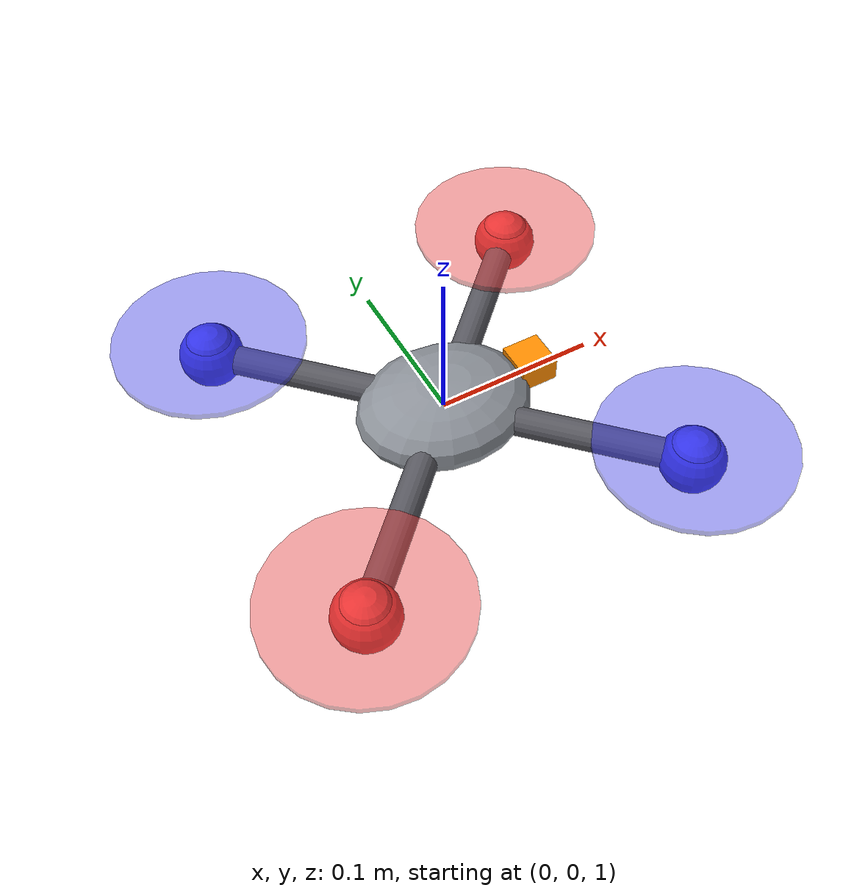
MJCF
<mujoco model="quad">
  <compiler angle="radian" autolimits="true"/>
  <option timestep="0.002" integrator="RK4" gravity="0 0 -9.81"/>

  <default>
    <default class="quad">
      <geom contype="0" conaffinity="0" group="1"/>
    </default>
  </default>

  <asset>
    <material name="body_mat" rgba="0.55 0.57 0.6 1" specular="0.6" shininess="0.5" reflectance="0.15"/>
    <material name="arm_mat" rgba="0.35 0.35 0.38 1" specular="0.4" shininess="0.3"/>
    <material name="nose_mat" rgba="1.0 0.55 0.0 1" specular="0.5" shininess="0.4"/>
  </asset>

  <worldbody>
    <body name="quad" pos="0 0 1" childclass="quad">
      <freejoint name="root"/>
      <!-- Explicit inertial overrides any geom-based inertia estimate -
           this is the authoritative mass/inertia from TDD.md section 2. -->
      <inertial pos="0 0 0" mass="1.0" diaginertia="0.003375 0.003375 0.006750"/>

      <!-- Central hub: rounded (ellipsoid) instead of a flat box, reads
           more like a drone fuselage than a wireframe placeholder. -->
      <geom name="body" type="ellipsoid" size="0.055 0.045 0.022" material="body_mat"/>

      <geom name="nose" type="box" pos="0.06 0 0.005" size="0.012 0.012 0.008" material="nose_mat"/>

      <!-- Arms: body center to each rotor position, purely visual. -->
      <geom name="arm1" type="capsule" fromto="0 0 0  0.106066  0.106066 0" size="0.009" material="arm_mat"/>
      <geom name="arm2" type="capsule" fromto="0 0 0 -0.106066 -0.106066 0" size="0.009" material="arm_mat"/>
      <geom name="arm3" type="capsule" fromto="0 0 0  0.106066 -0.106066 0" size="0.009" material="arm_mat"/>
      <geom name="arm4" type="capsule" fromto="0 0 0 -0.106066  0.106066 0" size="0.009" material="arm_mat"/>

      <site name="rotor1" pos=" 0.106066  0.106066 0" size="0.02" rgba="0.9 0.2 0.2 1"/>
      <site name="rotor2" pos="-0.106066 -0.106066 0" size="0.02" rgba="0.9 0.2 0.2 1"/>
      <site name="rotor3" pos=" 0.106066 -0.106066 0" size="0.02" rgba="0.2 0.2 0.9 1"/>
      <site name="rotor4" pos="-0.106066  0.106066 0" size="0.02" rgba="0.2 0.2 0.9 1"/>

      <!-- Rotor hubs (small) + prop discs (larger, translucent) for a more
           readable silhouette than a single flat disc per rotor. -->
      <geom name="hub1" type="cylinder" pos=" 0.106066  0.106066 0.008" size="0.012 0.006" rgba="0.9 0.2 0.2 1"/>
      <geom name="hub2" type="cylinder" pos="-0.106066 -0.106066 0.008" size="0.012 0.006" rgba="0.9 0.2 0.2 1"/>
      <geom name="hub3" type="cylinder" pos=" 0.106066 -0.106066 0.008" size="0.012 0.006" rgba="0.2 0.2 0.9 1"/>
      <geom name="hub4" type="cylinder" pos="-0.106066  0.106066 0.008" size="0.012 0.006" rgba="0.2 0.2 0.9 1"/>
      <geom name="prop1" type="cylinder" pos=" 0.106066  0.106066 0.012" size="0.06 0.002" rgba="0.9 0.2 0.2 0.45"/>
      <geom name="prop2" type="cylinder" pos="-0.106066 -0.106066 0.012" size="0.06 0.002" rgba="0.9 0.2 0.2 0.45"/>
      <geom name="prop3" type="cylinder" pos=" 0.106066 -0.106066 0.012" size="0.06 0.002" rgba="0.2 0.2 0.9 0.45"/>
      <geom name="prop4" type="cylinder" pos="-0.106066  0.106066 0.012" size="0.06 0.002" rgba="0.2 0.2 0.9 0.45"/>

      <site name="imu" pos="0 0 0" size="0.005"/>

      <camera name="chase" pos="-1.4 -1.4 0.7" xyaxes="0.707 -0.707 0  0.24 0.24 0.94" mode="trackcom"/>
      <camera name="birdseye" pos="0 0 9" xyaxes="1 0 0  0 1 0" mode="trackcom"/>
    </body>
  </worldbody>

  <actuator>
    <motor name="thrust1" site="rotor1" gear="0 0 1 0 0  0.02" ctrlrange="0 6.0" forcerange="0 6.0"/>
    <motor name="thrust2" site="rotor2" gear="0 0 1 0 0  0.02" ctrlrange="0 6.0" forcerange="0 6.0"/>
    <motor name="thrust3" site="rotor3" gear="0 0 1 0 0 -0.02" ctrlrange="0 6.0" forcerange="0 6.0"/>
    <motor name="thrust4" site="rotor4" gear="0 0 1 0 0 -0.02" ctrlrange="0 6.0" forcerange="0 6.0"/>
  </actuator>

  <sensor>
    <framepos name="position" objtype="site" objname="imu"/>
    <framequat name="attitude" objtype="site" objname="imu"/>
    <velocimeter name="linear_velocity" site="imu"/>
    <gyro name="angular_velocity" site="imu"/>
  </sensor>
</mujoco>
